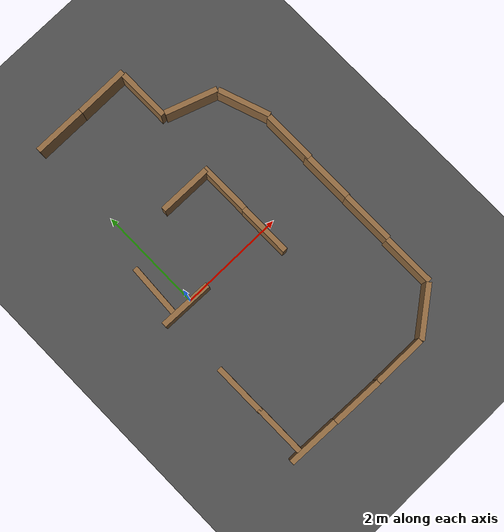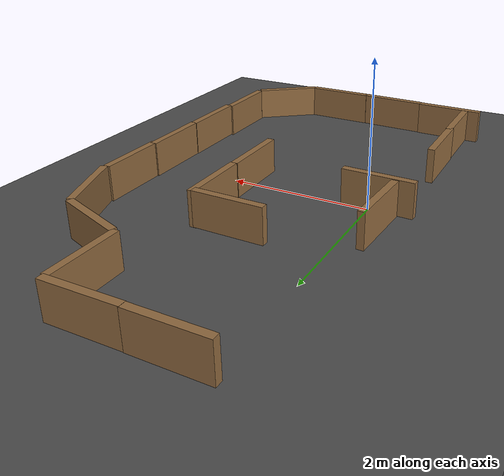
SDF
<sdf version="1.6">
 <world name="default">
  <model name="asphalt_plane_0">
   <static>1</static>
   <link name="link">
    <collision name="collision"><geometry><box><size>20 20 0.1</size></box></geometry></collision>
    <visual name="visual">
     <cast_shadows>0</cast_shadows>
     <geometry><box><size>20 20 0.1</size></box></geometry>
     <material>
      <script>
       <uri>model://asphalt_plane/materials/scripts</uri>
       <uri>model://asphalt_plane/materials/textures</uri>
       <name>vrc/asphalt</name>
      </script>
     </material>
    </visual>
    <velocity_decay><linear>0</linear><angular>0</angular></velocity_decay>
   </link>
   <pose>0 0 -0.132687 0 -0 0</pose>
  </model>
  <model name="mascor_pappTown_wall_1">
   <pose>-0.325213 0.509839 0 0 0 -0.052871</pose>
   <static>1</static>
   <link name="link">
    <pose>0 0 0.25 0 -0 0</pose>
    <collision name="collision"><geometry><box><size>0.1 1 0.5</size></box></geometry></collision>
    <visual name="visual">
     <geometry><box><size>0.1 1 0.5</size></box></geometry>
     <material>
      <ambient>0.5 0.5 0.5 1</ambient>
      <diffuse>0.57 0.417 0.25 1</diffuse>
      <specular>0.1 0.1 0.1 1</specular>
      <emissive>0 0 0 0</emissive>
     </material>
    </visual>
    <velocity_decay><linear>0</linear><angular>0</angular></velocity_decay>
   </link>
  </model>
  <model name="mascor_pappTown_wall_9">
   <pose>1.73456 -0.046788 0 0 -0 0</pose>
   <static>1</static>
   <link name="link">
    <pose>0 0 0.25 0 -0 0</pose>
    <collision name="collision"><geometry><box><size>0.1 1 0.5</size></box></geometry></collision>
    <visual name="visual">
     <geometry><box><size>0.1 1 0.5</size></box></geometry>
     <material>
      <ambient>0.5 0.5 0.5 1</ambient>
      <diffuse>0.57 0.417 0.25 1</diffuse>
      <specular>0.1 0.1 0.1 1</specular>
      <emissive>0 0 0 0</emissive>
     </material>
    </visual>
    <velocity_decay><linear>0</linear><angular>0</angular></velocity_decay>
   </link>
  </model>
  <model name="mascor_pappTown_wall_11">
   <pose>-0.452737 -1.69289 0 0 -0 0</pose>
   <static>1</static>
   <link name="link">
    <pose>0 0 0.25 0 -0 0</pose>
    <collision name="collision"><geometry><box><size>0.1 1 0.5</size></box></geometry></collision>
    <visual name="visual">
     <geometry><box><size>0.1 1 0.5</size></box></geometry>
     <material>
      <ambient>0.5 0.5 0.5 1</ambient>
      <diffuse>0.57 0.417 0.25 1</diffuse>
      <specular>0.1 0.1 0.1 1</specular>
      <emissive>0 0 0 0</emissive>
     </material>
    </visual>
    <velocity_decay><linear>0</linear><angular>0</angular></velocity_decay>
   </link>
  </model>
  <model name="mascor_pappTown_wall_12">
   <pose>1.7431 0.932256 0 0 -0 0</pose>
   <static>1</static>
   <link name="link">
    <pose>0 0 0.25 0 -0 0</pose>
    <collision name="collision"><geometry><box><size>0.1 1 0.5</size></box></geometry></collision>
    <visual name="visual">
     <geometry><box><size>0.1 1 0.5</size></box></geometry>
     <material>
      <ambient>0.5 0.5 0.5 1</ambient>
      <diffuse>0.57 0.417 0.25 1</diffuse>
      <specular>0.1 0.1 0.1 1</specular>
      <emissive>0 0 0 0</emissive>
     </material>
    </visual>
    <velocity_decay><linear>0</linear><angular>0</angular></velocity_decay>
   </link>
  </model>
  <model name="mascor_pappTown_wall_13">
   <pose>-0.444292 -2.64603 0 0 -0 0</pose>
   <static>1</static>
   <link name="link">
    <pose>0 0 0.25 0 -0 0</pose>
    <collision name="collision"><geometry><box><size>0.1 1 0.5</size></box></geometry></collision>
    <visual name="visual">
     <geometry><box><size>0.1 1 0.5</size></box></geometry>
     <material>
      <ambient>0.5 0.5 0.5 1</ambient>
      <diffuse>0.57 0.417 0.25 1</diffuse>
      <specular>0.1 0.1 0.1 1</specular>
      <emissive>0 0 0 0</emissive>
     </material>
    </visual>
    <velocity_decay><linear>0</linear><angular>0</angular></velocity_decay>
   </link>
  </model>
  <model name="mascor_pappTown_wall_15">
   <pose>-0.114627 -0.037425 0.009918 0 -0 1.54657</pose>
   <static>1</static>
   <link name="link">
    <pose>0 0 0.25 0 -0 0</pose>
    <collision name="collision"><geometry><box><size>0.1 1 0.5</size></box></geometry></collision>
    <visual name="visual">
     <geometry><box><size>0.1 1 0.5</size></box></geometry>
     <material>
      <ambient>0.5 0.5 0.5 1</ambient>
      <diffuse>0.57 0.417 0.25 1</diffuse>
      <specular>0.1 0.1 0.1 1</specular>
      <emissive>0 0 0 0</emissive>
     </material>
    </visual>
    <velocity_decay><linear>0</linear><angular>0</angular></velocity_decay>
   </link>
  </model>
  <model name="mascor_pappTown_wall_18">
   <pose>1.23625 1.39172 0.007745 0 -0 1.56081</pose>
   <static>1</static>
   <link name="link">
    <pose>0 0 0.25 0 -0 0</pose>
    <collision name="collision"><geometry><box><size>0.1 1 0.5</size></box></geometry></collision>
    <visual name="visual">
     <geometry><box><size>0.1 1 0.5</size></box></geometry>
     <material>
      <ambient>0.5 0.5 0.5 1</ambient>
      <diffuse>0.57 0.417 0.25 1</diffuse>
      <specular>0.1 0.1 0.1 1</specular>
      <emissive>0 0 0 0</emissive>
     </material>
    </visual>
    <velocity_decay><linear>0</linear><angular>0</angular></velocity_decay>
   </link>
  </model>
  <model name="mascor_pappTown_wall_23">
   <pose>3.1162 -2.11548 -0.012243 0 -0 0</pose>
   <static>1</static>
   <link name="link">
    <pose>0 0 0.25 0 -0 0</pose>
    <collision name="collision"><geometry><box><size>0.1 1 0.5</size></box></geometry></collision>
    <visual name="visual">
     <geometry><box><size>0.1 1 0.5</size></box></geometry>
     <material>
      <ambient>0.5 0.5 0.5 1</ambient>
      <diffuse>0.57 0.417 0.25 1</diffuse>
      <specular>0.1 0.1 0.1 1</specular>
      <emissive>0 0 0 0</emissive>
     </material>
    </visual>
    <velocity_decay><linear>0</linear><angular>0</angular></velocity_decay>
   </link>
  </model>
  <model name="mascor_pappTown_wall_25">
   <pose>3.13772 -1.11681 0 0 -0 0</pose>
   <static>1</static>
   <link name="link">
    <pose>0 0 0.25 0 -0 0</pose>
    <collision name="collision"><geometry><box><size>0.1 1 0.5</size></box></geometry></collision>
    <visual name="visual">
     <geometry><box><size>0.1 1 0.5</size></box></geometry>
     <material>
      <ambient>0.5 0.5 0.5 1</ambient>
      <diffuse>0.57 0.417 0.25 1</diffuse>
      <specular>0.1 0.1 0.1 1</specular>
      <emissive>0 0 0 0</emissive>
     </material>
    </visual>
    <velocity_decay><linear>0</linear><angular>0</angular></velocity_decay>
   </link>
  </model>
  <model name="mascor_pappTown_wall_26">
   <pose>3.14557 -0.136688 0 0 -0 0</pose>
   <static>1</static>
   <link name="link">
    <pose>0 0 0.25 0 -0 0</pose>
    <collision name="collision"><geometry><box><size>0.1 1 0.5</size></box></geometry></collision>
    <visual name="visual">
     <geometry><box><size>0.1 1 0.5</size></box></geometry>
     <material>
      <ambient>0.5 0.5 0.5 1</ambient>
      <diffuse>0.57 0.417 0.25 1</diffuse>
      <specular>0.1 0.1 0.1 1</specular>
      <emissive>0 0 0 0</emissive>
     </material>
    </visual>
    <velocity_decay><linear>0</linear><angular>0</angular></velocity_decay>
   </link>
  </model>
  <model name="mascor_pappTown_wall_27">
   <pose>3.16436 0.806145 0 0 -0 0</pose>
   <static>1</static>
   <link name="link">
    <pose>0 0 0.25 0 -0 0</pose>
    <collision name="collision"><geometry><box><size>0.1 1 0.5</size></box></geometry></collision>
    <visual name="visual">
     <geometry><box><size>0.1 1 0.5</size></box></geometry>
     <material>
      <ambient>0.5 0.5 0.5 1</ambient>
      <diffuse>0.57 0.417 0.25 1</diffuse>
      <specular>0.1 0.1 0.1 1</specular>
      <emissive>0 0 0 0</emissive>
     </material>
    </visual>
    <velocity_decay><linear>0</linear><angular>0</angular></velocity_decay>
   </link>
  </model>
  <model name="mascor_pappTown_wall_28">
   <pose>3.02928 1.78503 0 0 -0 0.33694</pose>
   <static>1</static>
   <link name="link">
    <pose>0 0 0.25 0 -0 0</pose>
    <collision name="collision"><geometry><box><size>0.1 1 0.5</size></box></geometry></collision>
    <visual name="visual">
     <geometry><box><size>0.1 1 0.5</size></box></geometry>
     <material>
      <ambient>0.5 0.5 0.5 1</ambient>
      <diffuse>0.57 0.417 0.25 1</diffuse>
      <specular>0.1 0.1 0.1 1</specular>
      <emissive>0 0 0 0</emissive>
     </material>
    </visual>
    <velocity_decay><linear>0</linear><angular>0</angular></velocity_decay>
   </link>
  </model>
  <model name="mascor_pappTown_wall_31">
   <pose>2.38905 2.43883 0 0 -0 1.2359</pose>
   <static>1</static>
   <link name="link">
    <pose>0 0 0.25 0 -0 0</pose>
    <collision name="collision"><geometry><box><size>0.1 1 0.5</size></box></geometry></collision>
    <visual name="visual">
     <geometry><box><size>0.1 1 0.5</size></box></geometry>
     <material>
      <ambient>0.5 0.5 0.5 1</ambient>
      <diffuse>0.57 0.417 0.25 1</diffuse>
      <specular>0.1 0.1 0.1 1</specular>
      <emissive>0 0 0 0</emissive>
     </material>
    </visual>
    <velocity_decay><linear>0</linear><angular>0</angular></velocity_decay>
   </link>
  </model>
  <model name="mascor_pappTown_wall_32">
   <pose>1.87932 3.09656 0 0 -0 0</pose>
   <static>1</static>
   <link name="link">
    <pose>0 0 0.25 0 -0 0</pose>
    <collision name="collision"><geometry><box><size>0.1 1 0.5</size></box></geometry></collision>
    <visual name="visual">
     <geometry><box><size>0.1 1 0.5</size></box></geometry>
     <material>
      <ambient>0.5 0.5 0.5 1</ambient>
      <diffuse>0.57 0.417 0.25 1</diffuse>
      <specular>0.1 0.1 0.1 1</specular>
      <emissive>0 0 0 0</emissive>
     </material>
    </visual>
    <velocity_decay><linear>0</linear><angular>0</angular></velocity_decay>
   </link>
  </model>
  <model name="mascor_pappTown_wall_33">
   <pose>1.4039 3.63073 0.001983 0 -0 1.57555</pose>
   <static>1</static>
   <link name="link">
    <pose>0 0 0.25 0 -0 0</pose>
    <collision name="collision"><geometry><box><size>0.1 1 0.5</size></box></geometry></collision>
    <visual name="visual">
     <geometry><box><size>0.1 1 0.5</size></box></geometry>
     <material>
      <ambient>0.5 0.5 0.5 1</ambient>
      <diffuse>0.57 0.417 0.25 1</diffuse>
      <specular>0.1 0.1 0.1 1</specular>
      <emissive>0 0 0 0</emissive>
     </material>
    </visual>
    <velocity_decay><linear>0</linear><angular>0</angular></velocity_decay>
   </link>
  </model>
  <model name="mascor_pappTown_wall_34">
   <pose>0.413483 3.63249 0 0 -0 1.56875</pose>
   <static>1</static>
   <link name="link">
    <pose>0 0 0.25 0 -0 0</pose>
    <collision name="collision"><geometry><box><size>0.1 1 0.5</size></box></geometry></collision>
    <visual name="visual">
     <geometry><box><size>0.1 1 0.5</size></box></geometry>
     <material>
      <ambient>0.5 0.5 0.5 1</ambient>
      <diffuse>0.57 0.417 0.25 1</diffuse>
      <specular>0.1 0.1 0.1 1</specular>
      <emissive>0 0 0 0</emissive>
     </material>
    </visual>
    <velocity_decay><linear>0</linear><angular>0</angular></velocity_decay>
   </link>
  </model>
  <model name="mascor_pappTown_wall_54">
   <pose>-0.176393 -3.16101 0 -0.00444 -0.000143 -1.60293</pose>
   <static>1</static>
   <link name="link">
    <pose>0 0 0.25 0 -0 0</pose>
    <collision name="collision"><geometry><box><size>0.1 1 0.5</size></box></geometry></collision>
    <visual name="visual">
     <geometry><box><size>0.1 1 0.5</size></box></geometry>
     <material>
      <ambient>0.5 0.5 0.5 1</ambient>
      <diffuse>0.57 0.417 0.25 1</diffuse>
      <specular>0.1 0.1 0.1 1</specular>
      <emissive>0 0 0 0</emissive>
     </material>
    </visual>
    <velocity_decay><linear>0</linear><angular>0</angular></velocity_decay>
   </link>
  </model>
  <model name="mascor_pappTown_wall_55">
   <pose>0.819436 -3.1983 0 0 -0 1.54146</pose>
   <static>1</static>
   <link name="link">
    <pose>0 0 0.25 0 -0 0</pose>
    <collision name="collision"><geometry><box><size>0.1 1 0.5</size></box></geometry></collision>
    <visual name="visual">
     <geometry><box><size>0.1 1 0.5</size></box></geometry>
     <material>
      <ambient>0.5 0.5 0.5 1</ambient>
      <diffuse>0.57 0.417 0.25 1</diffuse>
      <specular>0.1 0.1 0.1 1</specular>
      <emissive>0 0 0 0</emissive>
     </material>
    </visual>
    <velocity_decay><linear>0</linear><angular>0</angular></velocity_decay>
   </link>
  </model>
  <model name="mascor_pappTown_wall_57">
   <pose>1.79618 -3.21295 0 0 -0 1.5616</pose>
   <static>1</static>
   <link name="link">
    <pose>0 0 0.25 0 -0 0</pose>
    <collision name="collision"><geometry><box><size>0.1 1 0.5</size></box></geometry></collision>
    <visual name="visual">
     <geometry><box><size>0.1 1 0.5</size></box></geometry>
     <material>
      <ambient>0.5 0.5 0.5 1</ambient>
      <diffuse>0.57 0.417 0.25 1</diffuse>
      <specular>0.1 0.1 0.1 1</specular>
      <emissive>0 0 0 0</emissive>
     </material>
    </visual>
    <velocity_decay><linear>0</linear><angular>0</angular></velocity_decay>
   </link>
  </model>
  <model name="mascor_pappTown_wall_59">
   <pose>2.69778 -2.92627 0 0 0 -0.914758</pose>
   <static>1</static>
   <link name="link">
    <pose>0 0 0.25 0 -0 0</pose>
    <collision name="collision"><geometry><box><size>0.1 1 0.5</size></box></geometry></collision>
    <visual name="visual">
     <geometry><box><size>0.1 1 0.5</size></box></geometry>
     <material>
      <ambient>0.5 0.5 0.5 1</ambient>
      <diffuse>0.57 0.417 0.25 1</diffuse>
      <specular>0.1 0.1 0.1 1</specular>
      <emissive>0 0 0 0</emissive>
     </material>
    </visual>
    <velocity_decay><linear>0</linear><angular>0</angular></velocity_decay>
   </link>
  </model>
 </world>
</sdf>
